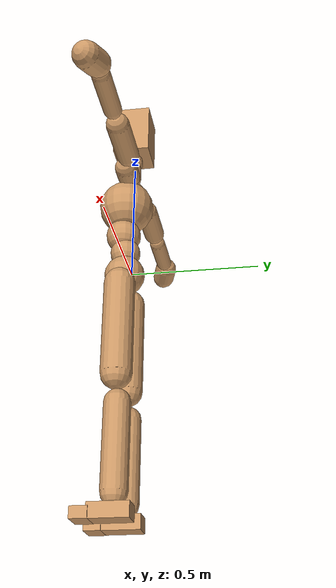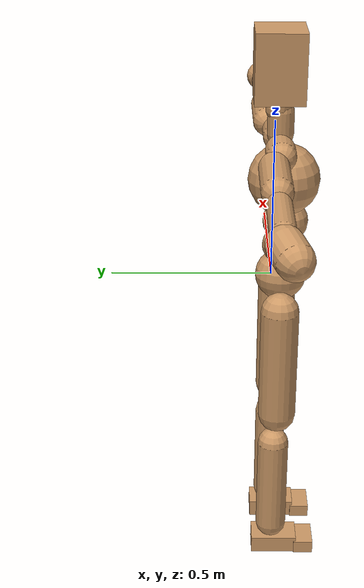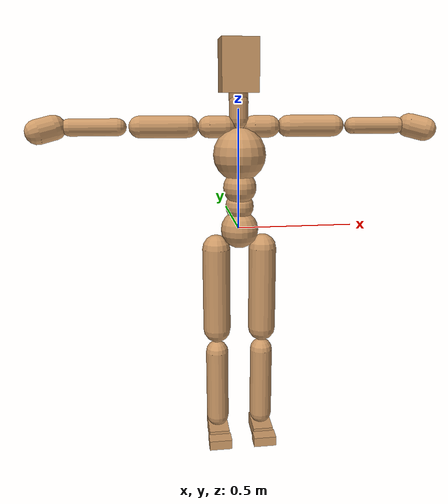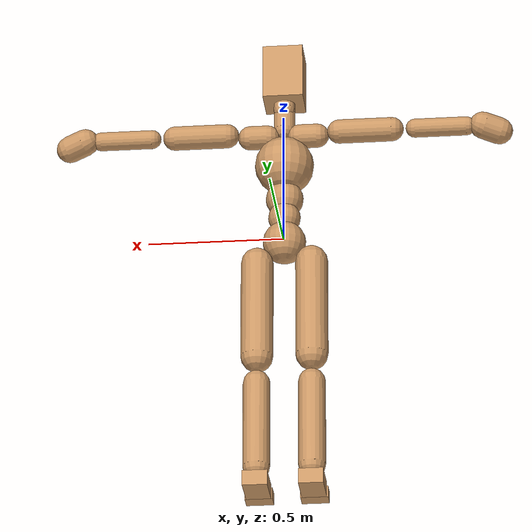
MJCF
<mujoco model="humanoid">
  <compiler coordinate="local" />
  <asset>
    <texture type="skybox" builtin="gradient" rgb1=".4 .5 .6" rgb2="0 0 0" width="100" height="100" />
    <texture builtin="flat" height="1278" mark="cross" markrgb="1 1 1" name="texgeom" random="0.01" rgb1="0.8 0.6 0.4" rgb2="0.8 0.6 0.4" type="cube" width="127" />
    <texture builtin="checker" height="100" name="texplane" rgb1="0 0 0" rgb2="0.8 0.8 0.8" type="2d" width="100" />
    <material name="MatPlane" reflectance="0.5" shininess="1" specular="1" texrepeat="60 60" texture="texplane" />
    <material name="geom" texture="texgeom" texuniform="true" />
  </asset>
  <worldbody>
    <light cutoff="100" diffuse="1 1 1" dir="-0 0 -1.3" directional="true" exponent="1" pos="0 0 1.3" specular=".1 .1 .1" />
    <body name="Hips" pos="0.0000 0.0000 0.0000">
      <geom type="sphere" size="0.08" pos="0 -0.03 0.00" density="1000" material="geom" conaffinity="1" condim="3" contype="7" margin="0.001" rgba="0.8 0.6 .4 1" />
        <body name="Spine1" pos="0.0000 0.0005 0.0500">
          <joint name="Spine1_x" type="hinge" pos="0 0 0" axis="1.0000 0.0000 0.0000" stiffness="800" damping="80" armature="0.02" range="-180.0000 180.0000" limited="true" />
          <joint name="Spine1_y" type="hinge" pos="0 0 0" axis="0.0000 1.0000 0.0000" stiffness="800" damping="80" armature="0.02" range="-180.0000 180.0000" limited="true" />
          <joint name="Spine1_z" type="hinge" pos="0 0 0" axis="0.0000 0.0000 1.0000" stiffness="800" damping="80" armature="0.02" range="-180.0000 180.0000" limited="true" />
          <geom type="sphere" size="0.06" pos="0 -0.03 0.05" density="1000" material="geom" conaffinity="1" condim="3" contype="7" margin="0.001" rgba="0.8 0.6 .4 1" />
            <body name="Spine2" pos="0.0000 0.0003 0.0713">
              <joint name="Spine2_x" type="hinge" pos="0 0 0" axis="1.0000 0.0000 0.0000" stiffness="800" damping="80" armature="0.02" range="-180.0000 180.0000" limited="true" />
              <joint name="Spine2_y" type="hinge" pos="0 0 0" axis="0.0000 1.0000 0.0000" stiffness="800" damping="80" armature="0.02" range="-180.0000 180.0000" limited="true" />
              <joint name="Spine2_z" type="hinge" pos="0 0 0" axis="0.0000 0.0000 1.0000" stiffness="800" damping="80" armature="0.02" range="-180.0000 180.0000" limited="true" />
              <geom type="sphere" size="0.07" pos="0 -0.04 0.06" density="1000" material="geom" conaffinity="1" condim="3" contype="7" margin="0.001" rgba="0.8 0.6 .4 1" />
                <body name="Chest" pos="0.0000 0.0082 0.0755">
                  <joint name="Chest_x" type="hinge" pos="0 0 0" axis="1.0000 0.0000 0.0000" stiffness="800" damping="80" armature="0.02" range="-180.0000 180.0000" limited="true" />
                  <joint name="Chest_y" type="hinge" pos="0 0 0" axis="0.0000 1.0000 0.0000" stiffness="800" damping="80" armature="0.02" range="-180.0000 180.0000" limited="true" />
                  <joint name="Chest_z" type="hinge" pos="0 0 0" axis="0.0000 0.0000 1.0000" stiffness="800" damping="80" armature="0.02" range="-180.0000 180.0000" limited="true" />
                  <geom type="sphere" size="0.11" pos="0 -0.04 0.12" density="1000" material="geom" conaffinity="1" condim="3" contype="7" margin="0.001" rgba="0.8 0.6 .4 1" />
                    <body name="Neck1" pos="-0.0018 0.0055 0.2631">
                      <joint name="Neck1_x" type="hinge" pos="0 0 0" axis="1.0000 0.0000 0.0000" stiffness="200" damping="20" armature="0.02" range="-180.0000 180.0000" limited="true" />
                      <joint name="Neck1_y" type="hinge" pos="0 0 0" axis="0.0000 1.0000 0.0000" stiffness="200" damping="20" armature="0.02" range="-180.0000 180.0000" limited="true" />
                      <joint name="Neck1_z" type="hinge" pos="0 0 0" axis="0.0000 0.0000 1.0000" stiffness="200" damping="20" armature="0.02" range="-180.0000 180.0000" limited="true" />
                      <geom type="capsule" size="0.04" contype="1" conaffinity="1" fromto="0.0000 -0.03 0.0 0.0000 -0.03 0.07" density="1000" material="geom" condim="3" margin="0.001" rgba="0.8 0.6 .4 1" />
                        <body name="Neck2" pos="0.0000 -0.0230 0.0771">
                          <joint name="Neck2_x" type="hinge" pos="0 0 0" axis="1.0000 0.0000 0.0000" stiffness="200" damping="20" armature="0.02" range="-180.0000 180.0000" limited="true" />
                          <joint name="Neck2_y" type="hinge" pos="0 0 0" axis="0.0000 1.0000 0.0000" stiffness="200" damping="20" armature="0.02" range="-180.0000 180.0000" limited="true" />
                          <joint name="Neck2_z" type="hinge" pos="0 0 0" axis="0.0000 0.0000 1.0000" stiffness="200" damping="20" armature="0.02" range="-180.0000 180.0000" limited="true" />
                          <geom type="capsule" size="0.04" contype="1" conaffinity="1" fromto="0.0000 0.0 0.0 0.0000 -0.01 0.05" density="1000" material="geom" condim="3" margin="0.001" rgba="0.8 0.6 .4 1" />
                            <body name="Head" pos="0.0000 -0.0195 0.0613">
                              <joint name="Head_x" type="hinge" pos="0 0 0" axis="1.0000 0.0000 0.0000" stiffness="200" damping="20" armature="0.02" range="-180.0000 180.0000" limited="true" />
                              <joint name="Head_y" type="hinge" pos="0 0 0" axis="0.0000 1.0000 0.0000" stiffness="200" damping="20" armature="0.02" range="-180.0000 180.0000" limited="true" />
                              <joint name="Head_z" type="hinge" pos="0 0 0" axis="0.0000 0.0000 1.0000" stiffness="200" damping="20" armature="0.02" range="-180.0000 180.0000" limited="true" />
                              <geom type="box" size="0.075 0.075 0.105" pos="0 0.02 0.07" quat="1 0 0 0" density="1000" material="geom" conaffinity="1" condim="3" contype="7" margin="0.001" rgba="0.8 0.6 .4 1" />
                            </body>
                        </body>
                    </body>
                    <body name="RightShoulder" pos="-0.0138 -0.0521 0.2318">
                      <joint name="RightShoulder_x" type="hinge" pos="0 0 0" axis="1.0000 0.0000 0.0000" stiffness="400" damping="40" armature="0.02" range="-180.0000 180.0000" limited="true" />
                      <joint name="RightShoulder_y" type="hinge" pos="0 0 0" axis="0.0000 1.0000 0.0000" stiffness="400" damping="40" armature="0.02" range="-180.0000 180.0000" limited="true" />
                      <joint name="RightShoulder_z" type="hinge" pos="0 0 0" axis="0.0000 0.0000 1.0000" stiffness="400" damping="40" armature="0.02" range="-180.0000 180.0000" limited="true" />
                      <geom type="capsule" size="0.045" contype="1" conaffinity="1" fromto="-0.045 0.0300 0.0000 -0.11 0.0300 0.0000" density="1000" material="geom" condim="3" margin="0.001" rgba="0.8 0.6 .4 1" />
                        <body name="RightArm" pos="-0.1504 0.0555 0.0000">
                          <joint name="RightArm_x" type="hinge" pos="0 0 0" axis="1.0000 0.0000 0.0000" stiffness="400" damping="40" armature="0.02" range="-180.0000 180.0000" limited="true" />
                          <joint name="RightArm_y" type="hinge" pos="0 0 0" axis="0.0000 1.0000 0.0000" stiffness="400" damping="40" armature="0.02" range="-180.0000 180.0000" limited="true" />
                          <joint name="RightArm_z" type="hinge" pos="0 0 0" axis="0.0000 0.0000 1.0000" stiffness="400" damping="40" armature="0.02" range="-180.0000 180.0000" limited="true" />
                          <geom type="capsule" size="0.045" contype="1" conaffinity="1" fromto="-0.045 0.0000 0.0000 -0.24 0.0000 0.0000" density="1000" material="geom" condim="3" margin="0.001" rgba="0.8 0.6 .4 1" />
                            <body name="RightForeArm" pos="-0.2874 0.0000 0.0000">
                              <joint name="RightForeArm_x" type="hinge" pos="0 0 0" axis="1.0000 0.0000 0.0000" stiffness="300" damping="30" armature="0.02" range="-180.0000 180.0000" limited="true" />
                              <joint name="RightForeArm_y" type="hinge" pos="0 0 0" axis="0.0000 1.0000 0.0000" stiffness="300" damping="80" armature="0.02" range="-180.0000 180.0000" limited="true" />
                              <joint name="RightForeArm_z" type="hinge" pos="0 0 0" axis="0.0000 0.0000 1.0000" stiffness="300" damping="30" armature="0.02" range="-180.0000 180.0000" limited="true" />
                              <geom type="capsule" size="0.035" contype="1" conaffinity="1" fromto="-0.04 0.0000 0.0000 -0.23 0.0000 0.0000" density="1000" material="geom" condim="3" margin="0.001" rgba="0.8 0.6 .4 1" />
                                <body name="RightHand" pos="-0.2713 0.0000 0.0000">
                                  <joint name="RightHand_x" type="hinge" pos="0 0 0" axis="1.0000 0.0000 0.0000" stiffness="200" damping="20" armature="0.02" range="-180.0000 180.0000" limited="true" />
                                  <joint name="RightHand_y" type="hinge" pos="0 0 0" axis="0.0000 1.0000 0.0000" stiffness="200" damping="20" armature="0.02" range="-180.0000 180.0000" limited="true" />
                                  <joint name="RightHand_z" type="hinge" pos="0 0 0" axis="0.0000 0.0000 1.0000" stiffness="200" damping="20" armature="0.02" range="-180.0000 180.0000" limited="true" />
                                  <geom type="capsule" size="0.05" contype="1" conaffinity="1" fromto="-0.02 0.0000 0.0000 -0.0807 -0.0215 -0.0158" density="1000" material="geom" condim="3" margin="0.001" rgba="0.8 0.6 .4 1" />
                                </body>
                            </body>
                        </body>
                    </body>
                    <body name="LeftShoulder" pos="0.0162 -0.0511 0.2324">
                      <joint name="LeftShoulder_x" type="hinge" pos="0 0 0" axis="-1.0000 0.0000 0.0000" stiffness="400" damping="40" armature="0.02" range="-180.0000 180.0000" limited="true" />
                      <joint name="LeftShoulder_y" type="hinge" pos="0 0 0" axis="0.0000 1.0000 0.0000" stiffness="400" damping="40" armature="0.02" range="-180.0000 180.0000" limited="true" />
                      <joint name="LeftShoulder_z" type="hinge" pos="0 0 0" axis="0.0000 0.0000 1.0000" stiffness="400" damping="40" armature="0.02" range="-180.0000 180.0000" limited="true" />
                      <geom type="capsule" size="0.045" contype="1" conaffinity="1" fromto="0.045 0.0300 0.0000 0.11 0.0300 0.0000" density="1000" material="geom" condim="3" margin="0.001" rgba="0.8 0.6 .4 1" />
                        <body name="LeftArm" pos="0.1492 0.0550 0.0000">
                          <joint name="LeftArm_x" type="hinge" pos="0 0 0" axis="-1.0000 0.0000 0.0000" stiffness="400" damping="40" armature="0.02" range="-180.0000 180.0000" limited="true" />
                          <joint name="LeftArm_y" type="hinge" pos="0 0 0" axis="0.0000 1.0000 0.0000" stiffness="400" damping="40" armature="0.02" range="-180.0000 180.0000" limited="true" />
                          <joint name="LeftArm_z" type="hinge" pos="0 0 0" axis="0.0000 0.0000 1.0000" stiffness="400" damping="40" armature="0.02" range="-180.0000 180.0000" limited="true" />
                          <geom type="capsule" size="0.045" contype="1" conaffinity="1" fromto="0.045 0.0000 0.0000 0.24 0.0000 0.0000" density="1000" material="geom" condim="3" margin="0.001" rgba="0.8 0.6 .4 1" />
                            <body name="LeftForeArm" pos="0.2874 0.0000 0.0000">
                              <joint name="LeftForeArm_x" type="hinge" pos="0 0 0" axis="-1.0000 0.0000 0.0000" stiffness="300" damping="30" armature="0.02" range="-180.0000 180.0000" limited="true" />
                              <joint name="LeftForeArm_y" type="hinge" pos="0 0 0" axis="0.0000 1.0000 0.0000" stiffness="300" damping="30" armature="0.02" range="-180.0000 180.0000" limited="true" />
                              <joint name="LeftForeArm_z" type="hinge" pos="0 0 0" axis="0.0000 0.0000 1.0000" stiffness="300" damping="30" armature="0.02" range="-180.0000 180.0000" limited="true" />
                              <geom type="capsule" size="0.035" contype="1" conaffinity="1" fromto="0.04 0.0000 0.0000 0.23 0.0000 0.0000" density="1000" material="geom" condim="3" margin="0.001" rgba="0.8 0.6 .4 1" />
                                <body name="LeftHand" pos="0.2709 0.0000 0.0000">
                                  <joint name="LeftHand_x" type="hinge" pos="0 0 0" axis="-1.0000 0.0000 0.0000" stiffness="200" damping="20" armature="0.02" range="-180.0000 180.0000" limited="true" />
                                  <joint name="LeftHand_y" type="hinge" pos="0 0 0" axis="0.0000 1.0000 0.0000" stiffness="200" damping="20" armature="0.02" range="-180.0000 180.0000" limited="true" />
                                  <joint name="LeftHand_z" type="hinge" pos="0 0 0" axis="0.0000 0.0000 1.0000" stiffness="200" damping="20" armature="0.02" range="-180.0000 180.0000" limited="true" />
                                  <geom type="capsule" size="0.05" contype="1" conaffinity="1" fromto="0.02 0.0000 0.0000 0.0808 -0.0216 -0.0159" density="1000" material="geom" condim="3" margin="0.001" rgba="0.8 0.6 .4 1" />
                                </body>
                            </body>
                        </body>
                    </body>
                </body>
            </body>
        </body>
        <body name="RightLeg" pos="-0.1005 -0.0262 -0.0830">
          <joint name="RightLeg_x" type="hinge" pos="0 0 0" axis="1.0000 0.0000 0.0000" stiffness="500" damping="50" armature="0.02" range="-180.0000 180.0000" limited="true" />
          <joint name="RightLeg_y" type="hinge" pos="0 0 0" axis="0.0000 1.0000 0.0000" stiffness="500" damping="50" armature="0.02" range="-180.0000 180.0000" limited="true" />
          <joint name="RightLeg_z" type="hinge" pos="0 0 0" axis="0.0000 0.0000 1.0000" stiffness="500" damping="50" armature="0.02" range="-180.0000 180.0000" limited="true" />
          <geom type="capsule" size="0.06" contype="1" conaffinity="1" fromto="0.0000 0.0000 0.0000 0.0000 0.0000 -0.37" density="1000" material="geom" condim="3" margin="0.001" rgba="0.8 0.6 .4 1" />
            <body name="RightShin" pos="0.0000 0.0081 -0.4336">
              <joint name="RightShin_x" type="hinge" pos="0 0 0" axis="1.0000 0.0000 0.0000" stiffness="500" damping="50" armature="0.02" range="-180.0000 180.0000" limited="true" />
              <joint name="RightShin_y" type="hinge" pos="0 0 0" axis="0.0000 1.0000 0.0000" stiffness="500" damping="50" armature="0.02" range="-180.0000 180.0000" limited="true" />
              <joint name="RightShin_z" type="hinge" pos="0 0 0" axis="0.0000 0.0000 1.0000" stiffness="500" damping="50" armature="0.02" range="-180.0000 180.0000" limited="true" />
              <geom type="capsule" size="0.05" contype="1" conaffinity="1" fromto="0.0000 0.0000 -0.05 0.0000 0.0000 -0.37" density="1000" material="geom" condim="3" margin="0.001" rgba="0.8 0.6 .4 1" />
                <body name="RightFoot" pos="0.0000 0.0348 -0.4212">
                  <joint name="RightFoot_x" type="hinge" pos="0 0 0" axis="1.0000 0.0000 0.0000" stiffness="100" damping="20" armature="0.02" range="-180.0000 180.0000" limited="true" />
                  <joint name="RightFoot_y" type="hinge" pos="0 0 0" axis="0.0000 1.0000 0.0000" stiffness="100" damping="20" armature="0.02" range="-180.0000 180.0000" limited="true" />
                  <joint name="RightFoot_z" type="hinge" pos="0 0 0" axis="0.0000 0.0000 1.0000" stiffness="100" damping="20" armature="0.02" range="-180.0000 180.0000" limited="true" />
                  <geom type="box" size="0.075 0.045 0.028" pos="0.0000 -0.045 -0.017" quat="0.7071 0.0 0.0 0.7071" density="1000" material="geom" conaffinity="1" condim="3" contype="7" margin="0.001" rgba="0.8 0.6 .4 1" />
                    <body name="RightToeBase" pos="0.0000 -0.1328 -0.0508">
                      <joint name="RightToeBase_x" type="hinge" pos="0 0 0" axis="1.0000 0.0000 0.0000" stiffness="60" damping="12" armature="0.02" range="-180.0000 180.0000" limited="true" />
                      <joint name="RightToeBase_y" type="hinge" pos="0 0 0" axis="0.0000 1.0000 0.0000" stiffness="60" damping="12" armature="0.02" range="-180.0000 180.0000" limited="true" />
                      <joint name="RightToeBase_z" type="hinge" pos="0 0 0" axis="0.0000 0.0000 1.0000" stiffness="60" damping="12" armature="0.02" range="-180.0000 180.0000" limited="true" />
                      <geom type="box" size="0.050 0.032 0.0215" pos="0 -0.012 0.027" quat="1 0 0 0" density="1000" material="geom" conaffinity="1" condim="3" contype="7" margin="0.001" rgba="0.8 0.6 .4 1" />
                    </body>
                </body>
            </body>
        </body>
        <body name="LeftLeg" pos="0.1004 -0.0260 -0.0843">
          <joint name="LeftLeg_x" type="hinge" pos="0 0 0" axis="-1.0000 0.0000 0.0000" stiffness="500" damping="50" armature="0.02" range="-180.0000 180.0000" limited="true" />
          <joint name="LeftLeg_y" type="hinge" pos="0 0 0" axis="0.0000 1.0000 0.0000" stiffness="500" damping="50" armature="0.02" range="-180.0000 180.0000" limited="true" />
          <joint name="LeftLeg_z" type="hinge" pos="0 0 0" axis="0.0000 0.0000 1.0000" stiffness="500" damping="50" armature="0.02" range="-180.0000 180.0000" limited="true" />
          <geom type="capsule" size="0.06" contype="1" conaffinity="1" fromto="0.0000 0.0000 0.0000 0.0000 0.0000 -0.37" density="1000" material="geom" condim="3" margin="0.001" rgba="0.8 0.6 .4 1" />
            <body name="LeftShin" pos="0.0000 0.0080 -0.4322">
              <joint name="LeftShin_x" type="hinge" pos="0 0 0" axis="-1.0000 0.0000 0.0000" stiffness="500" damping="50" armature="0.02" range="-180.0000 180.0000" limited="true" />
              <joint name="LeftShin_y" type="hinge" pos="0 0 0" axis="0.0000 1.0000 0.0000" stiffness="500" damping="50" armature="0.02" range="-180.0000 180.0000" limited="true" />
              <joint name="LeftShin_z" type="hinge" pos="0 0 0" axis="0.0000 0.0000 1.0000" stiffness="500" damping="50" armature="0.02" range="-180.0000 180.0000" limited="true" />
              <geom type="capsule" size="0.05" contype="1" conaffinity="1" fromto="0.0000 0.0000 -0.05 0.0000 0.0000 -0.37" density="1000" material="geom" condim="3" margin="0.001" rgba="0.8 0.6 .4 1" />
                <body name="LeftFoot" pos="0.0000 0.0348 -0.4216">
                  <joint name="LeftFoot_x" type="hinge" pos="0 0 0" axis="-1.0000 0.0000 0.0000" stiffness="100" damping="20" armature="0.02" range="-180.0000 180.0000" limited="true" />
                  <joint name="LeftFoot_y" type="hinge" pos="0 0 0" axis="0.0000 1.0000 0.0000" stiffness="100" damping="20" armature="0.02" range="-180.0000 180.0000" limited="true" />
                  <joint name="LeftFoot_z" type="hinge" pos="0 0 0" axis="0.0000 0.0000 1.0000" stiffness="100" damping="20" armature="0.02" range="-180.0000 180.0000" limited="true" />
                  <geom type="box" size="0.075 0.045 0.028" pos="0.0000 -0.045 -0.017" quat="0.7071 0.0 0.0 0.7071" density="1000" material="geom" conaffinity="1" condim="3" contype="7" margin="0.001" rgba="0.8 0.6 .4 1" />
                    <body name="LeftToeBase" pos="0.0000 -0.1323 -0.0506">
                      <joint name="LeftToeBase_x" type="hinge" pos="0 0 0" axis="-1.0000 0.0000 0.0000" stiffness="60" damping="12" armature="0.02" range="-180.0000 180.0000" limited="true" />
                      <joint name="LeftToeBase_y" type="hinge" pos="0 0 0" axis="0.0000 1.0000 0.0000" stiffness="60" damping="12" armature="0.02" range="-180.0000 180.0000" limited="true" />
                      <joint name="LeftToeBase_z" type="hinge" pos="0 0 0" axis="0.0000 0.0000 1.0000" stiffness="60" damping="12" armature="0.02" range="-180.0000 180.0000" limited="true" />
                      <geom type="box" size="0.050 0.032 0.0215" pos="0 -0.012 0.027" quat="1 0 0 0" density="1000" material="geom" conaffinity="1" condim="3" contype="7" margin="0.001" rgba="0.8 0.6 .4 1" />
                    </body>
                </body>
            </body>
        </body>
    <joint type="free" name="Hips" limited="false" actuatorfrclimited="false" /></body>
  </worldbody>
  <actuator>
      <motor name="Spine1_x" joint="Spine1_x" gear="200" />
      <motor name="Spine1_y" joint="Spine1_y" gear="200" />
      <motor name="Spine1_z" joint="Spine1_z" gear="200" />
      <motor name="Spine2_x" joint="Spine2_x" gear="200" />
      <motor name="Spine2_y" joint="Spine2_y" gear="200" />
      <motor name="Spine2_z" joint="Spine2_z" gear="200" />
      <motor name="Chest_x" joint="Chest_x" gear="200" />
      <motor name="Chest_y" joint="Chest_y" gear="200" />
      <motor name="Chest_z" joint="Chest_z" gear="200" />
      <motor name="Neck1_x" joint="Neck1_x" gear="100" />
      <motor name="Neck1_y" joint="Neck1_y" gear="100" />
      <motor name="Neck1_z" joint="Neck1_z" gear="100" />
      <motor name="Neck2_x" joint="Neck2_x" gear="100" />
      <motor name="Neck2_y" joint="Neck2_y" gear="100" />
      <motor name="Neck2_z" joint="Neck2_z" gear="100" />
      <motor name="Head_x" joint="Head_x" gear="100" />
      <motor name="Head_y" joint="Head_y" gear="100" />
      <motor name="Head_z" joint="Head_z" gear="100" />
      <motor name="RightShoulder_x" joint="RightShoulder_x" gear="200" />
      <motor name="RightShoulder_y" joint="RightShoulder_y" gear="200" />
      <motor name="RightShoulder_z" joint="RightShoulder_z" gear="200" />
      <motor name="RightArm_x" joint="RightArm_x" gear="200" />
      <motor name="RightArm_y" joint="RightArm_y" gear="200" />
      <motor name="RightArm_z" joint="RightArm_z" gear="200" />
      <motor name="RightForeArm_x" joint="RightForeArm_x" gear="100" />
      <motor name="RightForeArm_y" joint="RightForeArm_y" gear="100" />
      <motor name="RightForeArm_z" joint="RightForeArm_z" gear="100" />
      <motor name="RightHand_x" joint="RightHand_x" gear="70" />
      <motor name="RightHand_y" joint="RightHand_y" gear="70" />
      <motor name="RightHand_z" joint="RightHand_z" gear="70" />
      <motor name="LeftShoulder_x" joint="LeftShoulder_x" gear="200" />
      <motor name="LeftShoulder_y" joint="LeftShoulder_y" gear="200" />
      <motor name="LeftShoulder_z" joint="LeftShoulder_z" gear="200" />
      <motor name="LeftArm_x" joint="LeftArm_x" gear="200" />
      <motor name="LeftArm_y" joint="LeftArm_y" gear="200" />
      <motor name="LeftArm_z" joint="LeftArm_z" gear="200" />
      <motor name="LeftForeArm_x" joint="LeftForeArm_x" gear="100" />
      <motor name="LeftForeArm_y" joint="LeftForeArm_y" gear="100" />
      <motor name="LeftForeArm_z" joint="LeftForeArm_z" gear="100" />
      <motor name="LeftHand_x" joint="LeftHand_x" gear="70" />
      <motor name="LeftHand_y" joint="LeftHand_y" gear="70" />
      <motor name="LeftHand_z" joint="LeftHand_z" gear="70" />
      <motor name="RightLeg_x" joint="RightLeg_x" gear="250" />
      <motor name="RightLeg_y" joint="RightLeg_y" gear="250" />
      <motor name="RightLeg_z" joint="RightLeg_z" gear="250" />
      <motor name="RightShin_x" joint="RightShin_x" gear="200" />
      <motor name="RightShin_y" joint="RightShin_y" gear="200" />
      <motor name="RightShin_z" joint="RightShin_z" gear="200" />
      <motor name="RightFoot_x" joint="RightFoot_x" gear="100" />
      <motor name="RightFoot_y" joint="RightFoot_y" gear="100" />
      <motor name="RightFoot_z" joint="RightFoot_z" gear="100" />
      <motor name="RightToeBase_x" joint="RightToeBase_x" gear="50" />
      <motor name="RightToeBase_y" joint="RightToeBase_y" gear="50" />
      <motor name="RightToeBase_z" joint="RightToeBase_z" gear="50" />
      <motor name="LeftLeg_x" joint="LeftLeg_x" gear="250" />
      <motor name="LeftLeg_y" joint="LeftLeg_y" gear="250" />
      <motor name="LeftLeg_z" joint="LeftLeg_z" gear="250" />
      <motor name="LeftShin_x" joint="LeftShin_x" gear="200" />
      <motor name="LeftShin_y" joint="LeftShin_y" gear="200" />
      <motor name="LeftShin_z" joint="LeftShin_z" gear="200" />
      <motor name="LeftFoot_x" joint="LeftFoot_x" gear="100" />
      <motor name="LeftFoot_y" joint="LeftFoot_y" gear="100" />
      <motor name="LeftFoot_z" joint="LeftFoot_z" gear="100" />
      <motor name="LeftToeBase_x" joint="LeftToeBase_x" gear="50" />
      <motor name="LeftToeBase_y" joint="LeftToeBase_y" gear="50" />
      <motor name="LeftToeBase_z" joint="LeftToeBase_z" gear="50" />
  </actuator>
  <contact>
      <exclude body1="Hips" body2="Spine2" />
      <exclude body1="Spine1" body2="Chest" />
      <exclude body1="Spine2" body2="Neck1" />
      <exclude body1="Chest" body2="Neck2" />
      <exclude body1="Neck1" body2="Head" />
      <exclude body1="Spine1" body2="Neck1" />
      <exclude body1="Spine2" body2="Neck2" />
      <exclude body1="Chest" body2="Head" />
      <exclude body1="RightArm" body2="Chest" />
      <exclude body1="LeftArm" body2="Chest" />
      <exclude body1="RightArm" body2="Spine2" />
      <exclude body1="LeftArm" body2="Spine2" />
  </contact>
  <sensor />
  <size njmax="700" nconmax="700" />
</mujoco>
